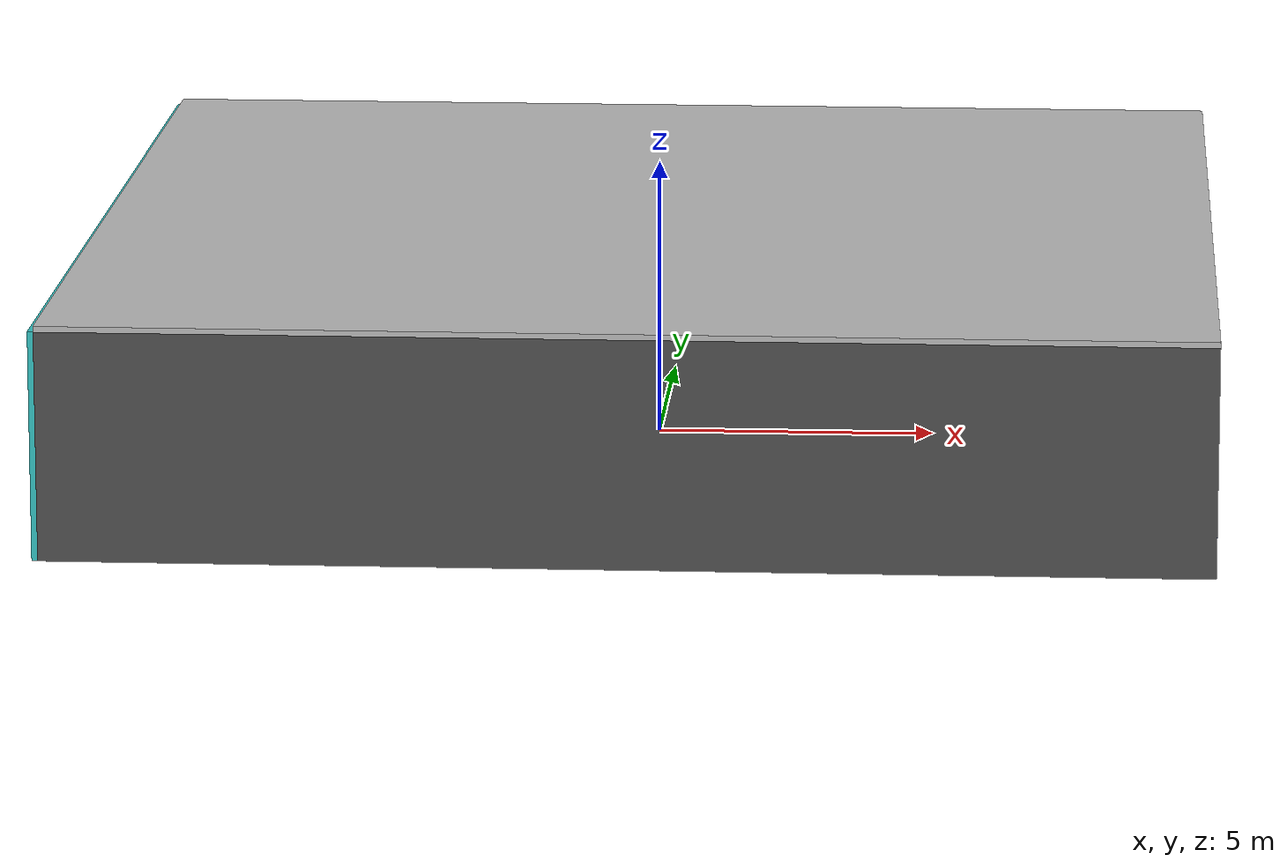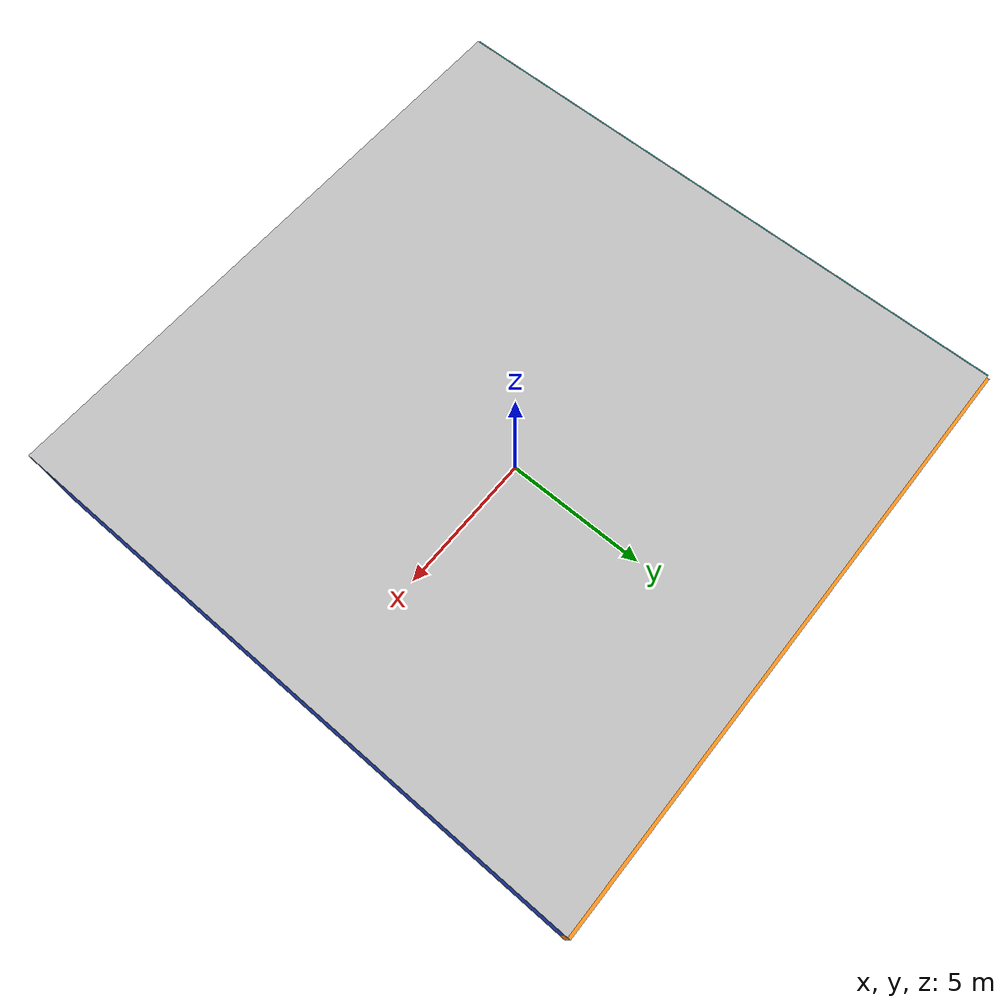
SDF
<sdf version="1.4">
 <world name="default">
  <physics type="ode">
   <max_step_size>0.001</max_step_size>
   <real_time_factor>1</real_time_factor>
   <real_time_update_rate>1000</real_time_update_rate>
   <gravity>0 0 -9.8</gravity>
  </physics>
  <scene><ambient>0.4 0.4 0.4 1</ambient><background>0.7 0.7 0.7 1</background><shadows>1</shadows></scene>
  <model name="Surrounding">
   <static>1</static>
   <link name="Ceiling">
    <collision name="Ceiling_Collision"><geometry><box><size>20 20 0.1</size></box></geometry></collision>
    <visual name="Ceiling_Visual">
     <geometry><box><size>20 20 0.1</size></box></geometry>
     <material>
      <script><uri>file://media/materials/scripts/gazebo.material</uri><name>Gazebo/JointAnchor</name></script>
     </material>
    </visual>
    <pose>0 0 4.05 0 0 0</pose>
   </link>
   <link name="Wall_South">
    <collision name="Wall_South_Collision">
     <geometry><box><size>20 0 4</size></box></geometry>
     <pose>0 0 2 0 -0 0</pose>
    </collision>
    <visual name="Wall_South_Visual">
     <pose>0 0 2 0 -0 0</pose>
     <geometry><box><size>20 0 4</size></box></geometry>
     <material>
      <script><uri>file://media/materials/scripts/gazebo.material</uri><name>Gazebo/Road</name></script>
     </material>
    </visual>
    <velocity_decay><linear>0</linear><angular>0</angular></velocity_decay>
    <pose>0 -10 0 0 -0 0</pose>
   </link>
   <link name="Wall_East">
    <collision name="Wall_21_Collision">
     <geometry><box><size>20 0 4</size></box></geometry>
     <pose>0 0 2 0 -0 0</pose>
    </collision>
    <visual name="Wall_21_Visual">
     <pose>0 0 2 0 -0 0</pose>
     <geometry><box><size>20 0 4</size></box></geometry>
     <material>
      <script><uri>file://media/materials/scripts/gazebo.material</uri><name>Gazebo/BlueLaser</name></script>
     </material>
    </visual>
    <velocity_decay><linear>0</linear><angular>0</angular></velocity_decay>
    <pose>10 0 0 0 -0 1.5708</pose>
   </link>
   <link name="Wall_North">
    <collision name="Wall_22_Collision">
     <geometry><box><size>20 0.2 4</size></box></geometry>
     <pose>0 0 2 0 -0 0</pose>
    </collision>
    <visual name="Wall_22_Visual">
     <pose>0 0 2 0 -0 0</pose>
     <geometry><box><size>20 0.2 4</size></box></geometry>
     <material>
      <script><uri>file://media/materials/scripts/gazebo.material</uri><name>Gazebo/Orange</name></script>
     </material>
    </visual>
    <velocity_decay><linear>0</linear><angular>0</angular></velocity_decay>
    <pose>0 10 0 0 -0 0</pose>
   </link>
   <link name="Wall_West">
    <collision name="Wall_23_Collision">
     <geometry><box><size>20 0.2 4</size></box></geometry>
     <pose>0 0 2 0 -0 0</pose>
    </collision>
    <visual name="Wall_23_Visual">
     <pose>0 0 2 0 -0 0</pose>
     <geometry><box><size>20 0.2 4</size></box></geometry>
     <material>
      <script><uri>file://media/materials/scripts/gazebo.material</uri><name>Gazebo/TurquoiseGlow</name></script>
     </material>
    </visual>
    <velocity_decay><linear>0</linear><angular>0</angular></velocity_decay>
    <pose>-10 0 0 0 0 -1.5708</pose>
   </link>
   <link name="Ground_link">
    <collision name="collision">
     <pose>0 0 .05 0 -0 0</pose>
     <geometry><box><size>20 20 0.1</size></box></geometry>
    </collision>
    <visual name="visual">
     <pose>0 0 .05 0 -0 0</pose>
     <geometry><box><size>20 20 0.1</size></box></geometry>
     <material>
      <script><uri>file://media/materials/scripts/gazebo.material</uri><name>Gazebo/ZincYellow</name></script>
     </material>
    </visual>
   </link>
   <static>1</static>
  </model>
  <spherical_coordinates>
   <surface_model>EARTH_WGS84</surface_model>
   <latitude_deg>0</latitude_deg>
   <longitude_deg>0</longitude_deg>
   <elevation>0</elevation>
   <heading_deg>0</heading_deg>
  </spherical_coordinates>
  <light name="lightball_0" type="diffuse">
   <diffuse>0.8 0.8 0.8 1</diffuse>
   <specular>0.2 0.2 0.2 1</specular>
   <attenuation>
    <range>100</range>
    <constant>0.7</constant>
    <linear>0.01</linear>
    <quadratic>0.001</quadratic>
   </attenuation>
   <direction>-0.5 0.1 -0.9</direction>
   <pose>7.72862437726 -1.27077049957 2.21783518797 0 0 0</pose>
  </light>
  <light name="lightball_1" type="diffuse">
   <diffuse>0.8 0.8 0.8 1</diffuse>
   <specular>0.2 0.2 0.2 1</specular>
   <attenuation>
    <range>100</range>
    <constant>0.7</constant>
    <linear>0.01</linear>
    <quadratic>0.001</quadratic>
   </attenuation>
   <direction>-0.5 0.1 -0.9</direction>
   <pose>5.62539850724 4.84164750082 3.77460568194 0 0 0</pose>
  </light>
  <light name="lightball_2" type="diffuse">
   <diffuse>0.8 0.8 0.8 1</diffuse>
   <specular>0.2 0.2 0.2 1</specular>
   <attenuation>
    <range>100</range>
    <constant>0.7</constant>
    <linear>0.01</linear>
    <quadratic>0.001</quadratic>
   </attenuation>
   <direction>-0.5 0.1 -0.9</direction>
   <pose>-5.59528553749 -6.4850397051 2.69143405629 0 0 0</pose>
  </light>
  <light name="lightball_3" type="diffuse">
   <diffuse>0.8 0.8 0.8 1</diffuse>
   <specular>0.2 0.2 0.2 1</specular>
   <attenuation>
    <range>100</range>
    <constant>0.7</constant>
    <linear>0.01</linear>
    <quadratic>0.001</quadratic>
   </attenuation>
   <direction>-0.5 0.1 -0.9</direction>
   <pose>3.82271831223 -2.79145714099 1.75817499705 0 0 0</pose>
  </light>
  <light name="lightball_4" type="diffuse">
   <diffuse>0.8 0.8 0.8 1</diffuse>
   <specular>0.2 0.2 0.2 1</specular>
   <attenuation>
    <range>100</range>
    <constant>0.7</constant>
    <linear>0.01</linear>
    <quadratic>0.001</quadratic>
   </attenuation>
   <direction>-0.5 0.1 -0.9</direction>
   <pose>-4.76338048705 7.41330875205 2.04442182756 0 0 0</pose>
  </light>
  <light name="lightball_5" type="diffuse">
   <diffuse>0.8 0.8 0.8 1</diffuse>
   <specular>0.2 0.2 0.2 1</specular>
   <attenuation>
    <range>100</range>
    <constant>0.7</constant>
    <linear>0.01</linear>
    <quadratic>0.001</quadratic>
   </attenuation>
   <direction>-0.5 0.1 -0.9</direction>
   <pose>-0.656372121556 -9.73643187911 3.25275990339 0 0 0</pose>
  </light>
  <light name="lightball_6" type="diffuse">
   <diffuse>0.8 0.8 0.8 1</diffuse>
   <specular>0.2 0.2 0.2 1</specular>
   <attenuation>
    <range>100</range>
    <constant>0.7</constant>
    <linear>0.01</linear>
    <quadratic>0.001</quadratic>
   </attenuation>
   <direction>-0.5 0.1 -0.9</direction>
   <pose>7.38634392745 9.32345388143 3.82718591004 0 0 0</pose>
  </light>
  <include><uri>model://cabinet</uri><pose>-8.13766386232 -4.73551120005 0 0 0 0.161782598199</pose></include>
  <include>
   <uri>model://textured_shapes</uri>
   <pose>-4.46631814551 -5.2776712747 0 0 0 0.606324251286</pose>
  </include>
  <include>
   <uri>model://textured_shapes</uri>
   <pose>2.04670578249 1.25097575899 0 0 0 2.70528428305</pose>
  </include>
  <include><uri>model://table</uri><pose>6.77926671944 -5.15598329098 0 0 0 1.84639422039</pose></include>
  <include>
   <uri>model://construction_cone</uri>
   <pose>7.31624201909 2.10784107101 0 0 0 2.66536468398</pose>
  </include>
 </world>
</sdf>

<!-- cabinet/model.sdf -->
<sdf version="1.5">
  <model name="cabinet">
    <static>true</static>
    <link name="cabinet_bottom_plate">
      <inertial>
        <pose>0 0 -1 0 0 0</pose>
        <inertia>
          <ixx>2.050000</ixx>
          <ixy>0</ixy>
          <ixz>0</ixz>
          <iyy>2.050000</iyy>
          <iyz>0</iyz>
          <izz>2.050000</izz>
        </inertia>
        <mass>25.000000</mass>
      </inertial>
      <collision name="cabinet_bottom_plate_geom">
        <pose>0 0 0.010000 0 0 0</pose>
        <geometry>
          <box>
            <size>0.450000 0.450000 0.020000</size>
          </box>
        </geometry>
      </collision>
      <visual name="cabinet_bottom_plate_geom_visual">
        <pose>0 0 0.010000 0 0 0</pose>
        <geometry>
          <box>
            <size>0.450000 0.450000 0.020000</size>
          </box>
        </geometry>
        <material>
          <script>
            <uri>model://media/materials/scripts/gazebo.material</uri>
            <name>Gazebo/Wood</name>
          </script>
        </material>
      </visual>
      <collision name="cabinet_bottom_plate_geom_cabinet_back_plate">
        <pose>0.235000 0 0.510000 0 0 0</pose>
        <geometry>
          <box>
            <size>0.020000 0.450000 1.020000</size>
          </box>
        </geometry>
      </collision>
      <visual name="cabinet_bottom_plate_geom_cabinet_back_plate_visual">
        <pose>0.235000 0 0.510000 0 0 0</pose>
        <geometry>
          <box>
            <size>0.020000 0.450000 1.020000</size>
          </box>
        </geometry>
        <material>
          <script>
            <uri>model://media/materials/scripts/gazebo.material</uri>
            <name>Gazebo/Wood</name>
          </script>
        </material>
      </visual>
      <collision name="cabinet_bottom_plate_geom_cabinet_left_plate">
        <pose>0 0.235000 0.510000 0 0 0</pose>
        <geometry>
          <box>
            <size>0.450000 0.020000 1.020000</size>
          </box>
        </geometry>
      </collision>
      <visual name="cabinet_bottom_plate_geom_cabinet_left_plate_visual">
        <pose>0 0.235000 0.510000 0 0 0</pose>
        <geometry>
          <box>
            <size>0.450000 0.020000 1.020000</size>
          </box>
        </geometry>
        <material>
          <script>
            <uri>model://media/materials/scripts/gazebo.material</uri>
            <name>Gazebo/Wood</name>
          </script>
        </material>
      </visual>
      <collision name="cabinet_bottom_plate_geom_cabinet_middle_plate">
        <pose>0 0 0.510000 0 0 0</pose>
        <geometry>
          <box>
            <size>0.450000 0.450000 0.020000</size>
          </box>
        </geometry>
      </collision>
      <visual name="cabinet_bottom_plate_geom_cabinet_middle_plate_visual">
        <pose>0 0 0.510000 0 0 0</pose>
        <geometry>
          <box>
            <size>0.450000 0.450000 0.020000</size>
          </box>
        </geometry>
        <material>
          <script>
            <uri>model://media/materials/scripts/gazebo.material</uri>
            <name>Gazebo/Wood</name>
          </script>
        </material>
      </visual>
      <collision name="cabinet_bottom_plate_geom_cabinet_right_plate">
        <pose>0 -0.235000 0.510000 0 0 0</pose>
        <geometry>
          <box>
            <size>0.450000 0.020000 1.020000</size>
          </box>
        </geometry>
      </collision>
      <visual name="cabinet_bottom_plate_geom_cabinet_right_plate_visual">
        <pose>0 -0.235000 0.510000 0 0 0</pose>
        <geometry>
          <box>
            <size>0.450000 0.020000 1.020000</size>
          </box>
        </geometry>
        <material>
          <script>
            <uri>model://media/materials/scripts/gazebo.material</uri>
            <name>Gazebo/Wood</name>
          </script>
        </material>
      </visual>
      <collision name="cabinet_bottom_plate_geom_cabinet_top_plate">
        <pose>0 0 1.010000 0 0 0</pose>
        <geometry>
          <box>
            <size>0.450000 0.450000 0.020000</size>
          </box>
        </geometry>
      </collision>
      <visual name="cabinet_bottom_plate_geom_cabinet_top_plate_visual">
        <pose>0 0 1.010000 0 0 0</pose>
        <geometry>
          <box>
            <size>0.450000 0.450000 0.020000</size>
          </box>
        </geometry>
        <material>
          <script>
            <uri>model://media/materials/scripts/gazebo.material</uri>
            <name>Gazebo/Wood</name>
          </script>
        </material>
      </visual>
    </link>
  </model>
</sdf>

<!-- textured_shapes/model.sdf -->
<sdf version="1.6">
  <model name="textured_shapes">
    <pose>0 0 0.5 0 0 0</pose>
    <link name="box">
      <pose>0 -1.5 0 0 0 0</pose>
      <collision name="collision">
        <geometry>
          <box>
            <size>1 1 1</size>
          </box>
        </geometry>
      </collision>
      <visual name="visual">
        <geometry>
          <box>
            <size>1 1 1</size>
          </box>
        </geometry>
        <material>
          <script>
            <uri>model://../model_source/models/textured_shapes/materials/scripts</uri>
            <uri>model://../model_source/models/textured_shapes/materials/textures</uri>
            <name>TexturedShape/Squares</name>
          </script>
        </material>
      </visual>
    </link>
    <link name="sphere">
      <collision name="collision">
        <geometry>
          <sphere>
            <radius>0.5</radius>
          </sphere>
        </geometry>
      </collision>
      <visual name="visual">
        <geometry>
          <sphere>
            <radius>0.5</radius>
          </sphere>
        </geometry>
        <material>
          <script>
            <uri>model://../model_source/models/textured_shapes/materials/scripts</uri>
            <uri>model://../model_source/models/textured_shapes/materials/textures</uri>
            <name>TexturedShape/Squares</name>
          </script>
        </material>
      </visual>
    </link>
    <link name="cylinder">
      <pose>0 1.5 0 0 0 0</pose>
      <collision name="collision">
        <geometry>
          <cylinder>
            <radius>0.5</radius>
            <length>1</length>
          </cylinder>
        </geometry>
      </collision>
      <visual name="visual">
        <geometry>
          <cylinder>
            <radius>0.5</radius>
            <length>1</length>
          </cylinder>
        </geometry>
        <material>
          <script>
            <uri>model://../model_source/models/textured_shapes/materials/scripts</uri>
            <uri>model://../model_source/models/textured_shapes/materials/textures</uri>
            <name>TexturedShape/Squares</name>
          </script>
        </material>
      </visual>
    </link>
  </model>
</sdf>

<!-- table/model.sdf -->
<sdf version="1.5">
  <model name="table">
    <static>true</static>
    <link name="link">
      <collision name="surface">
        <pose>0 0 1.0 0 0 0</pose>
        <geometry>
          <box>
            <size>1.5 0.8 0.03</size>
          </box>
        </geometry>
        <surface>
          <friction>
            <ode>
              <mu>0.6</mu>
              <mu2>0.6</mu2>
            </ode>
          </friction>
        </surface>
      </collision>
      <visual name="visual1">
        <pose>0 0 1.0 0 0 0</pose>
        <geometry>
          <box>
            <size>1.5 0.8 0.03</size>
          </box>
        </geometry>
        <material>
          <script>
            <uri>model://media/materials/scripts/gazebo.material</uri>
            <name>Gazebo/Wood</name>
          </script>
        </material>
      </visual>
      <collision name="front_left_leg">
        <pose>0.68 0.38 0.5 0 0 0</pose>
        <geometry>
          <cylinder>
            <radius>0.02</radius>
            <length>1.0</length>
          </cylinder>
        </geometry>
      </collision>
      <visual name="front_left_leg">
        <pose>0.68 0.38 0.5 0 0 0</pose>
        <geometry>
          <cylinder>
            <radius>0.02</radius>
            <length>1.0</length>
          </cylinder>
        </geometry>
        <material>
          <script>
            <uri>model://media/materials/scripts/gazebo.material</uri>
            <name>Gazebo/Grey</name>
          </script>
        </material>
      </visual>
      <collision name="front_right_leg">
        <pose>0.68 -0.38 0.5 0 0 0</pose>
        <geometry>
          <cylinder>
            <radius>0.02</radius>
            <length>1.0</length>
          </cylinder>
        </geometry>
      </collision>
      <visual name="front_right_leg">
        <pose>0.68 -0.38 0.5 0 0 0</pose>
        <geometry>
          <cylinder>
            <radius>0.02</radius>
            <length>1.0</length>
          </cylinder>
        </geometry>
        <material>
          <script>
            <uri>model://media/materials/scripts/gazebo.material</uri>
            <name>Gazebo/Grey</name>
          </script>
        </material>
      </visual>
      <collision name="back_right_leg">
        <pose>-0.68 -0.38 0.5 0 0 0</pose>
        <geometry>
          <cylinder>
            <radius>0.02</radius>
            <length>1.0</length>
          </cylinder>
        </geometry>
      </collision>
      <visual name="back_right_leg">
        <pose>-0.68 -0.38 0.5 0 0 0</pose>
        <geometry>
          <cylinder>
            <radius>0.02</radius>
            <length>1.0</length>
          </cylinder>
        </geometry>
        <material>
          <script>
            <uri>model://media/materials/scripts/gazebo.material</uri>
            <name>Gazebo/Grey</name>
          </script>
        </material>
      </visual>
      <collision name="back_left_leg">
        <pose>-0.68 0.38 0.5 0 0 0</pose>
        <geometry>
          <cylinder>
            <radius>0.02</radius>
            <length>1.0</length>
          </cylinder>
        </geometry>
      </collision>
      <visual name="back_left_leg">
        <pose>-0.68 0.38 0.5 0 0 0</pose>
        <geometry>
          <cylinder>
            <radius>0.02</radius>
            <length>1.0</length>
          </cylinder>
        </geometry>
        <material>
          <script>
            <uri>model://media/materials/scripts/gazebo.material</uri>
            <name>Gazebo/Grey</name>
          </script>
        </material>
      </visual>
    </link>
  </model>
</sdf>

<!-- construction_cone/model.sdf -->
<sdf version="1.5">
  <model name="Construction Cone">
    <link name="link">
      <collision name="collision">
        <geometry>
          <mesh>
            <scale>10 10 10</scale>
            <uri>file://isr-testbed/construction_cone/meshes/construction_cone.dae</uri>
          </mesh>
        </geometry>
      </collision>
      <visual name="visual">
        <geometry>
          <mesh>
            <scale>10 10 10</scale>
            <uri>file://isr-testbed/construction_cone/meshes/construction_cone.dae</uri>
          </mesh>
        </geometry>
      </visual>
    </link>
  </model>
</sdf>
